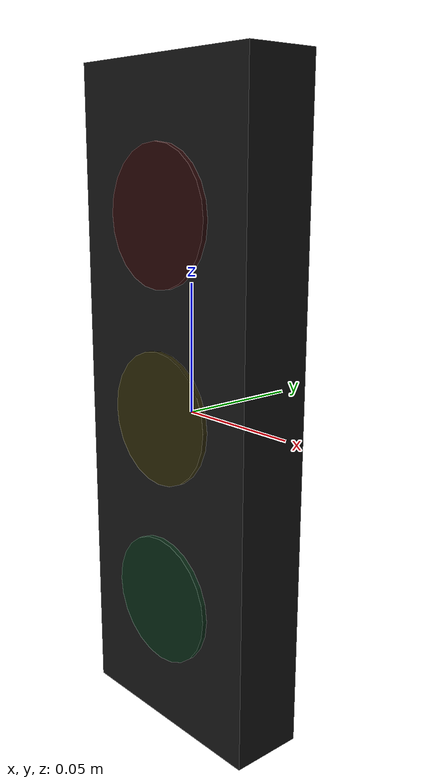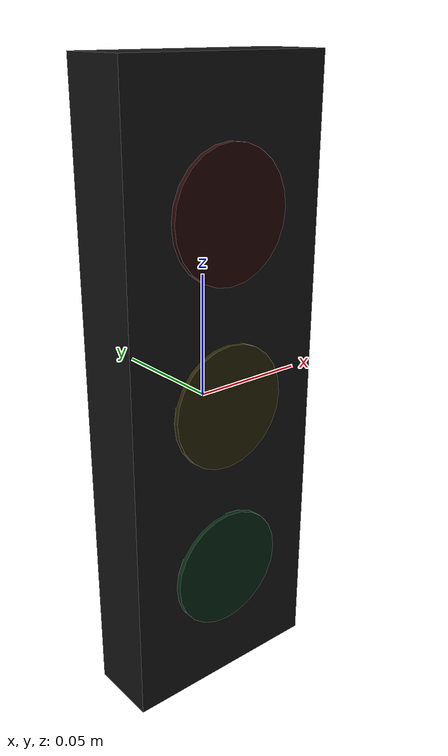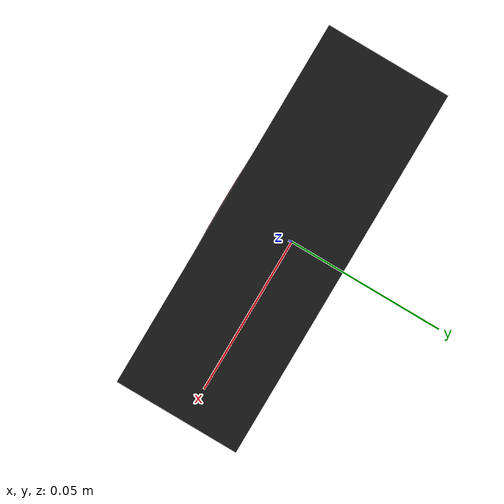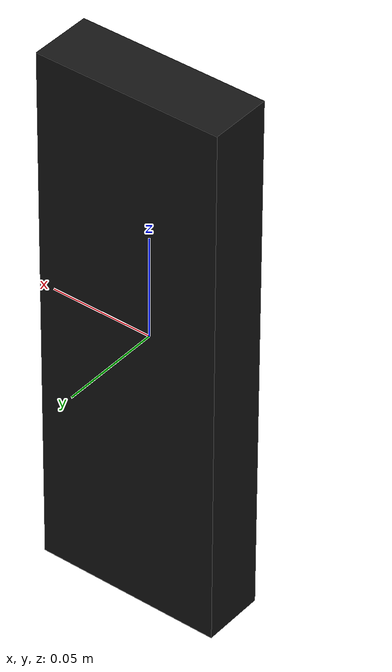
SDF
<?xml version="1.0" ?>
<sdf version="1.10">
  <model name="autorace_traffic_light">
    <static>true</static>
    <link name="housing">
      <collision name="collision">
        <geometry>
          <box><size>0.09 0.03 0.26</size></box>
        </geometry>
      </collision>
      <visual name="visual">
        <geometry>
          <box><size>0.09 0.03 0.26</size></box>
        </geometry>
        <material>
          <ambient>0.05 0.05 0.05 1</ambient>
          <diffuse>0.08 0.08 0.08 1</diffuse>
          <specular>0.02 0.02 0.02 1</specular>
        </material>
      </visual>

      <!-- Dark sockets. The lit lamp models sit just in front of these. -->
      <visual name="socket_red">
        <pose>0 -0.016 0.075 1.5708 0 0</pose>
        <geometry><cylinder><radius>0.026</radius><length>0.002</length></cylinder></geometry>
        <material>
          <ambient>0.12 0.02 0.02 1</ambient>
          <diffuse>0.15 0.02 0.02 1</diffuse>
        </material>
      </visual>
      <visual name="socket_yellow">
        <pose>0 -0.016 0.0 1.5708 0 0</pose>
        <geometry><cylinder><radius>0.026</radius><length>0.002</length></cylinder></geometry>
        <material>
          <ambient>0.13 0.11 0.02 1</ambient>
          <diffuse>0.16 0.14 0.02 1</diffuse>
        </material>
      </visual>
      <visual name="socket_green">
        <pose>0 -0.016 -0.075 1.5708 0 0</pose>
        <geometry><cylinder><radius>0.026</radius><length>0.002</length></cylinder></geometry>
        <material>
          <ambient>0.02 0.12 0.06 1</ambient>
          <diffuse>0.02 0.15 0.07 1</diffuse>
        </material>
      </visual>
    </link>
  </model>
</sdf>
